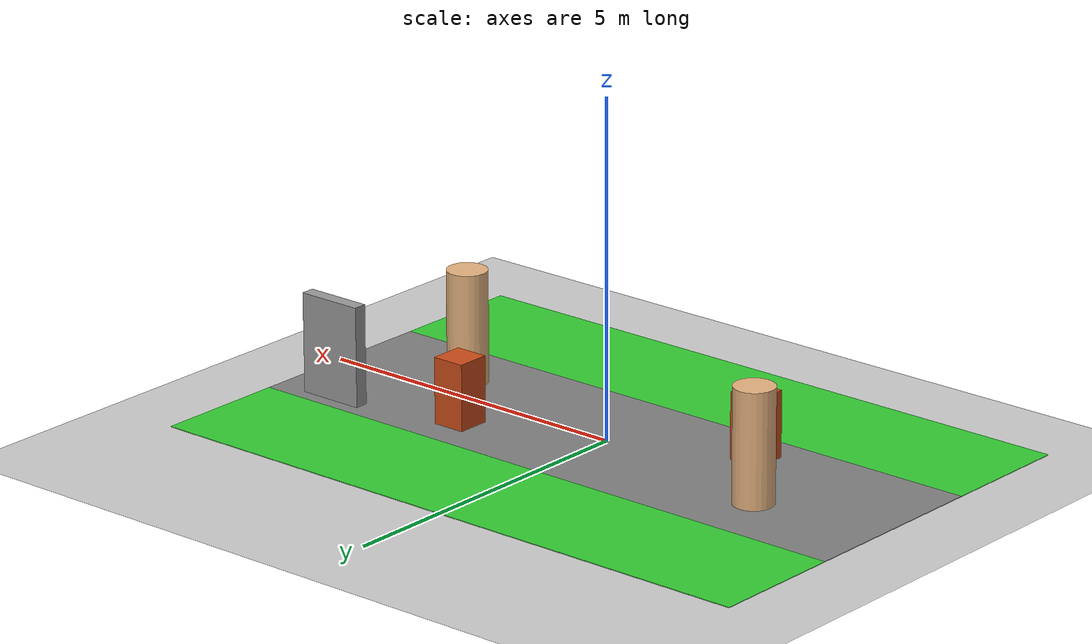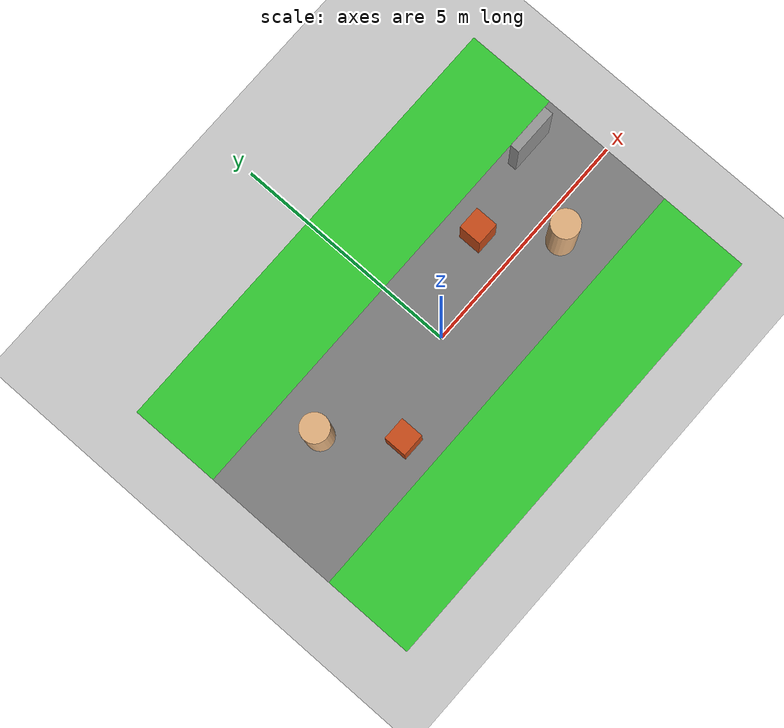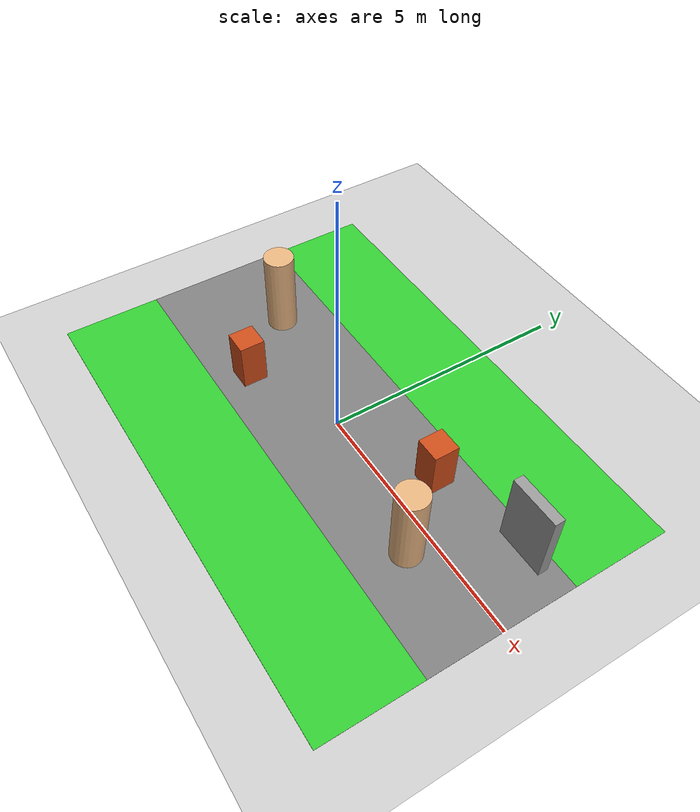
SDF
<?xml version="1.0" ?>
<sdf version="1.6">
  <world name="semantic_world">

    <!-- Physics -->
    <physics type="ode">
      <real_time_update_rate>1000.0</real_time_update_rate>
      <max_step_size>0.001</max_step_size>
      <real_time_factor>1</real_time_factor>
    </physics>

    <!-- Lighting -->
    <include>
      <uri>model://sun</uri>
    </include>

    <!-- Ground Plane -->
    <include>
      <uri>model://ground_plane</uri>
    </include>

    <!-- Road (grey) -->
    <model name="road">
      <static>true</static>
      <link name="link">
        <collision name="collision">
          <geometry>
            <box>
              <size>10 3 0.01</size>
            </box>
          </geometry>
        </collision>
        <visual name="visual">
          <geometry>
            <box>
              <size>10 3 0.01</size>
            </box>
          </geometry>
          <material>
            <ambient>0.5 0.5 0.5 1</ambient>
            <diffuse>0.5 0.5 0.5 1</diffuse>
          </material>
        </visual>
      </link>
      <pose>0 0 0.005 0 0 0</pose>
    </model>

    <!-- Grass areas (green) -->
    <model name="grass_left">
      <static>true</static>
      <link name="link">
        <collision name="collision">
          <geometry>
            <box>
              <size>10 2 0.01</size>
            </box>
          </geometry>
        </collision>
        <visual name="visual">
          <geometry>
            <box>
              <size>10 2 0.01</size>
            </box>
          </geometry>
          <material>
            <ambient>0.2 0.8 0.2 1</ambient>
            <diffuse>0.2 0.8 0.2 1</diffuse>
          </material>
        </visual>
      </link>
      <pose>0 -2.5 0.005 0 0 0</pose>
    </model>

    <model name="grass_right">
      <static>true</static>
      <link name="link">
        <collision name="collision">
          <geometry>
            <box>
              <size>10 2 0.01</size>
            </box>
          </geometry>
        </collision>
        <visual name="visual">
          <geometry>
            <box>
              <size>10 2 0.01</size>
            </box>
          </geometry>
          <material>
            <ambient>0.2 0.8 0.2 1</ambient>
            <diffuse>0.2 0.8 0.2 1</diffuse>
          </material>
        </visual>
      </link>
      <pose>0 2.5 0.005 0 0 0</pose>
    </model>

    <!-- Obstacles (boxes) -->
    <model name="obstacle_1">
      <static>true</static>
      <link name="link">
        <collision name="collision">
          <geometry>
            <box>
              <size>0.5 0.5 1.0</size>
            </box>
          </geometry>
        </collision>
        <visual name="visual">
          <geometry>
            <box>
              <size>0.5 0.5 1.0</size>
            </box>
          </geometry>
          <material>
            <ambient>0.8 0.3 0.1 1</ambient>
            <diffuse>0.8 0.3 0.1 1</diffuse>
          </material>
        </visual>
      </link>
      <pose>2 0.8 0.5 0 0 0</pose>
    </model>

    <model name="obstacle_2">
      <static>true</static>
      <link name="link">
        <collision name="collision">
          <geometry>
            <box>
              <size>0.5 0.5 1.0</size>
            </box>
          </geometry>
        </collision>
        <visual name="visual">
          <geometry>
            <box>
              <size>0.5 0.5 1.0</size>
            </box>
          </geometry>
          <material>
            <ambient>0.8 0.3 0.1 1</ambient>
            <diffuse>0.8 0.3 0.1 1</diffuse>
          </material>
        </visual>
      </link>
      <pose>-2 -0.8 0.5 0 0 0</pose>
    </model>

    <!-- Human-like cylinders (to simulate people) -->
    <model name="person_1">
      <static>true</static>
      <link name="link">
        <collision name="collision">
          <geometry>
            <cylinder>
              <radius>0.3</radius>
              <length>1.7</length>
            </cylinder>
          </geometry>
        </collision>
        <visual name="visual">
          <geometry>
            <cylinder>
              <radius>0.3</radius>
              <length>1.7</length>
            </cylinder>
          </geometry>
          <material>
            <ambient>0.9 0.7 0.5 1</ambient>
            <diffuse>0.9 0.7 0.5 1</diffuse>
          </material>
        </visual>
      </link>
      <pose>3 -0.5 0.85 0 0 0</pose>
    </model>

    <model name="person_2">
      <static>true</static>
      <link name="link">
        <collision name="collision">
          <geometry>
            <cylinder>
              <radius>0.3</radius>
              <length>1.7</length>
            </cylinder>
          </geometry>
        </collision>
        <visual name="visual">
          <geometry>
            <cylinder>
              <radius>0.3</radius>
              <length>1.7</length>
            </cylinder>
          </geometry>
          <material>
            <ambient>0.9 0.7 0.5 1</ambient>
            <diffuse>0.9 0.7 0.5 1</diffuse>
          </material>
        </visual>
      </link>
      <pose>-3 0.5 0.85 0 0 0</pose>
    </model>

    <!-- Walls -->
    <model name="wall_1">
      <static>true</static>
      <link name="link">
        <collision name="collision">
          <geometry>
            <box>
              <size>1 0.2 1.5</size>
            </box>
          </geometry>
        </collision>
        <visual name="visual">
          <geometry>
            <box>
              <size>1 0.2 1.5</size>
            </box>
          </geometry>
          <material>
            <ambient>0.6 0.6 0.6 1</ambient>
            <diffuse>0.6 0.6 0.6 1</diffuse>
          </material>
        </visual>
      </link>
      <pose>4 1.2 0.75 0 0 0</pose>
    </model>

  </world>
</sdf>
